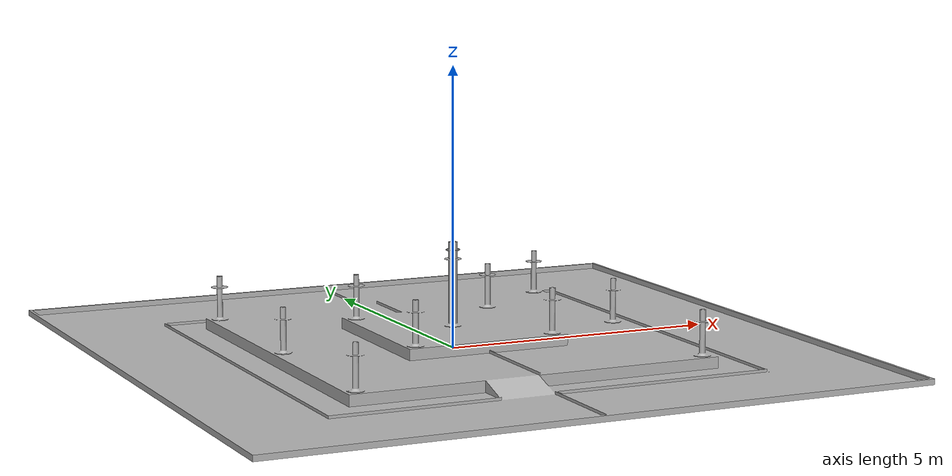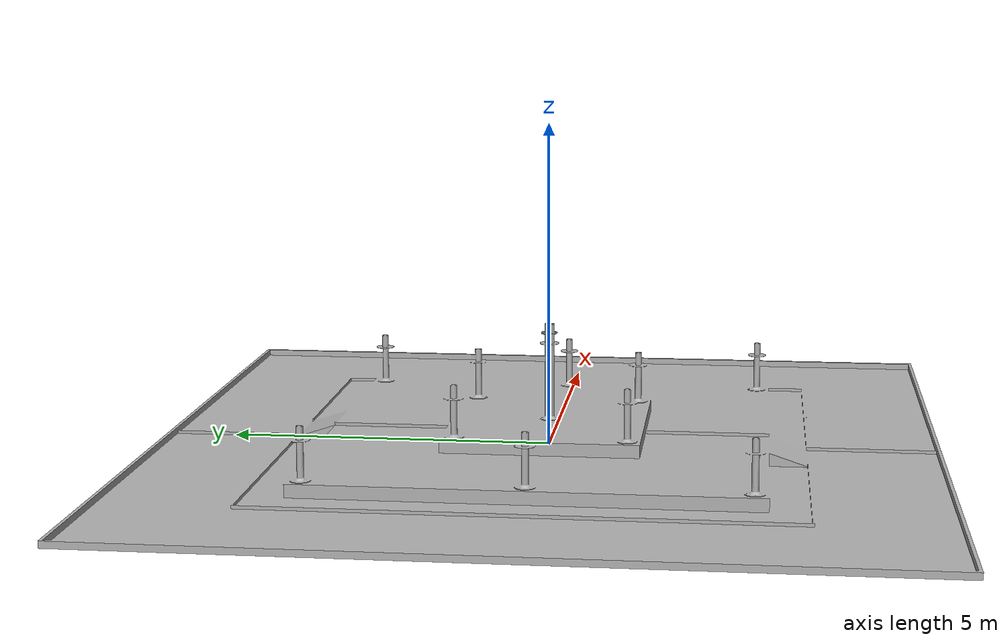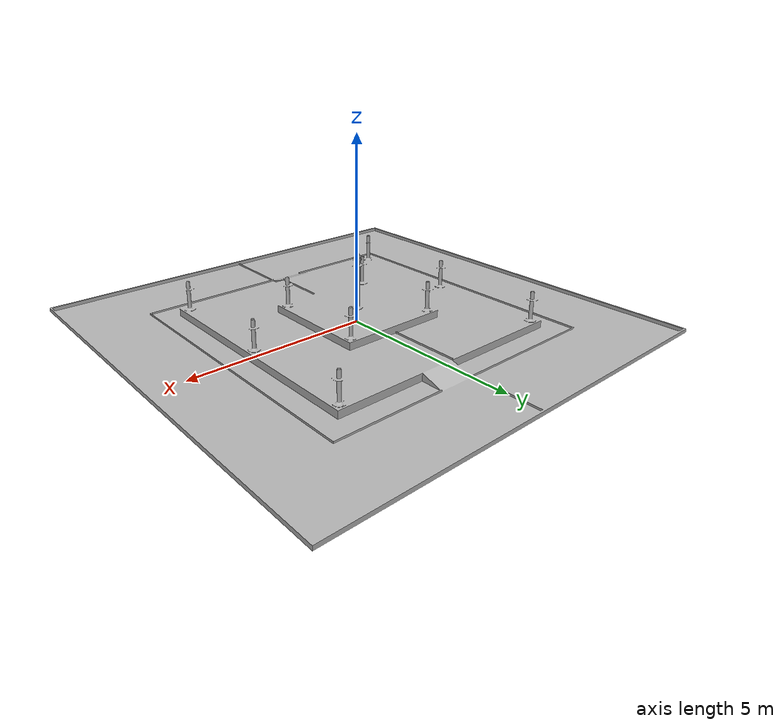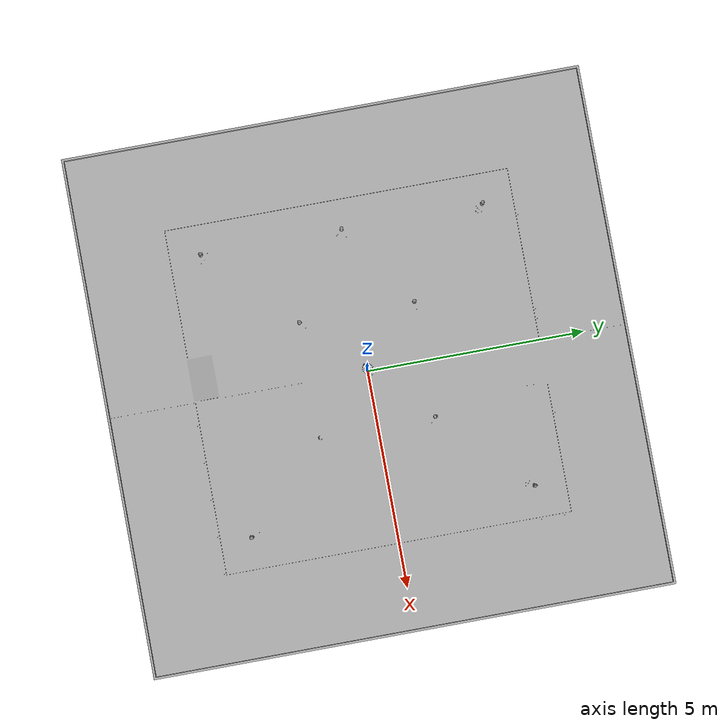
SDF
<sdf version='1.5'>
    <model name='ros_symbol'>
      <static>1</static>
      <link name='symbol'>
              <!-- Draw Hexagon -->
        <collision name='head'>
          <pose>0 0 0 0 0 0</pose>
          <geometry>
            <mesh>
              <uri>model://NHK23_court/meshes/NHK23_court.stl</uri>
            </mesh>
          </geometry>
          <max_contacts>10</max_contacts>
          <surface>
            <bounce/>
            <friction>
              <ode/>
            </friction>
            <contact>
              <ode/>
            </contact>
          </surface>
        </collision>

        <visual name='head'>
          <pose>0 0 0 0 0 0</pose>
          <geometry>
            <mesh>
              <uri>model://NHK23_court/meshes/NHK23_court.stl</uri>
            </mesh>
          </geometry>
        </visual>
    </link>
  </model>
</sdf>
